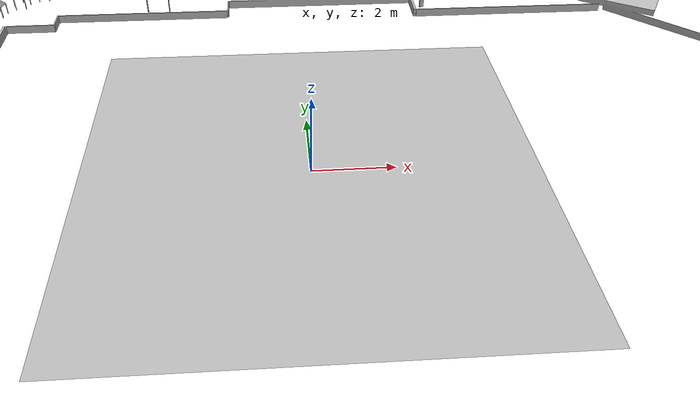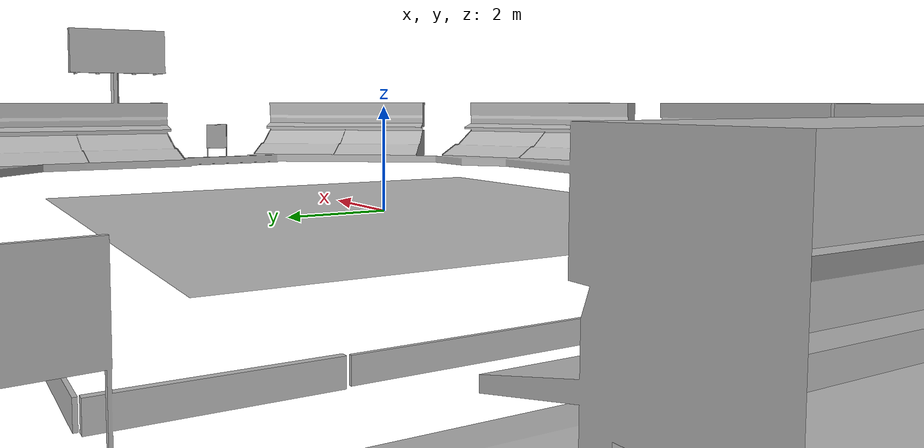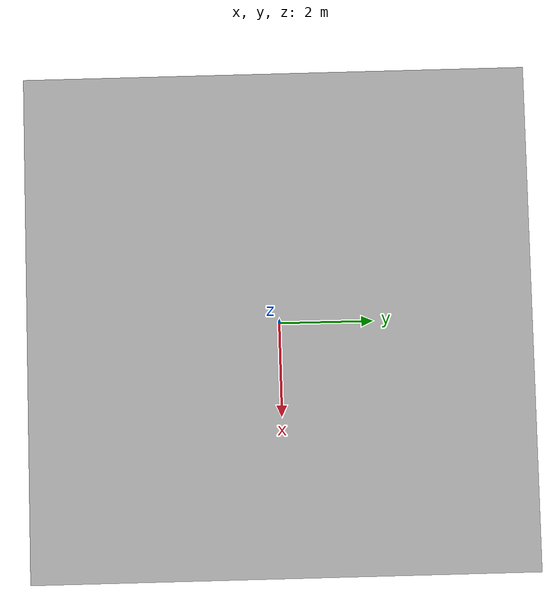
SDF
<?xml version='1.0' encoding='utf-8'?>
<sdf version="1.4">
<model name="template_model">
<link name="track">
<collision name="collision">
<pose>0 0 0 0 0 0</pose>
<geometry>
<mesh>
<uri>model://meshes/2022_reinvent_champ/2022_reinvent_champ_collision.dae</uri>
</mesh>
</geometry>
</collision>
<visual name="visual">
<pose>0 0 0 0 0 0</pose>
<geometry>
<mesh>
<uri>model://meshes/2022_reinvent_champ/2022_reinvent_champ.dae</uri>
</mesh>
</geometry>
</visual>
</link>
<link name="background">
<visual name="visual">
<pose>0 0 0 0 0 0</pose>
<geometry>
<mesh>
<uri>model://meshes/2022_reinvent_champ/background.dae</uri>
</mesh>
</geometry>
</visual>
</link>
<static>1</static>
</model>
</sdf>
